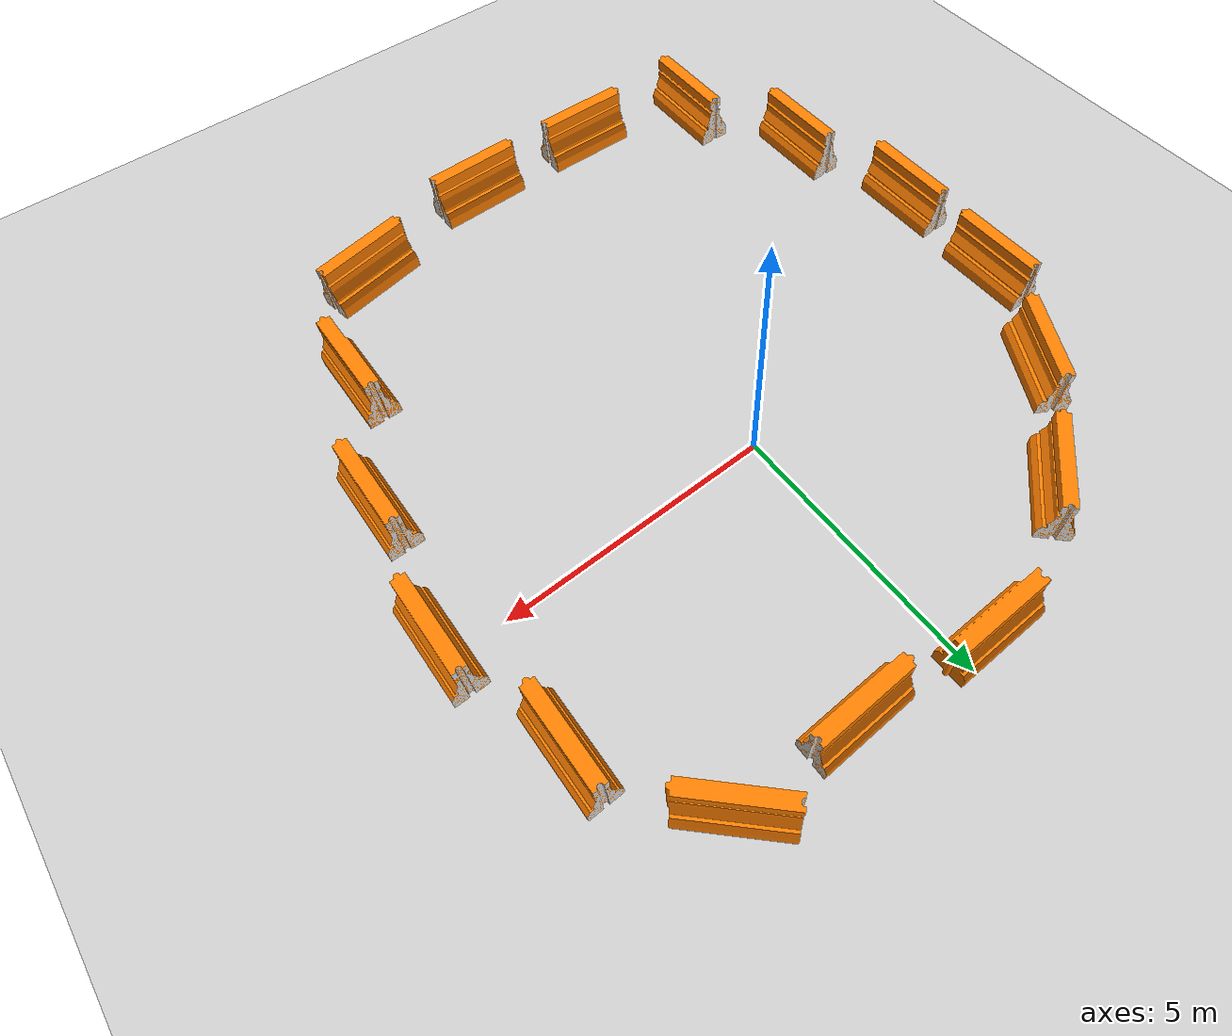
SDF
<sdf version="1.6">
 <world name="default">
  <light name="sun" type="directional">
   <pose>0 0 10 0 -0 0</pose>
   <diffuse>0.8 0.8 0.8 1</diffuse>
   <specular>0.1 0.1 0.1 1</specular>
   <attenuation>
    <range>1000</range>
    <constant>0.9</constant>
    <linear>0.01</linear>
    <quadratic>0.001</quadratic>
   </attenuation>
   <direction>-0.5 0.5 -1</direction>
  </light>
  <model name="ground_plane">
   <static>1</static>
   <link name="link">
    <collision name="collision">
     <geometry><plane><normal>0 0 1</normal><size>100 100</size></plane></geometry>
     <surface><friction><ode><mu>100</mu><mu2>50</mu2></ode></friction></surface>
    </collision>
    <visual name="visual">
     <cast_shadows>0</cast_shadows>
     <geometry><plane><normal>0 0 1</normal><size>100 100</size></plane></geometry>
     <material>
      <script><uri>file://media/materials/scripts/gazebo.material</uri><name>Gazebo/Grey</name></script>
     </material>
    </visual>
   </link>
  </model>
  <gravity>0 0 -9.8</gravity>
  <magnetic_field>6e-06 2.3e-05 -4.2e-05</magnetic_field>
  <atmosphere type="adiabatic"/>
  <physics name="default_physics" default="0" type="ode">
   <max_step_size>0.001</max_step_size>
   <real_time_factor>1</real_time_factor>
   <real_time_update_rate>1000</real_time_update_rate>
  </physics>
  <scene><ambient>0.4 0.4 0.4 1</ambient><background>0.7 0.7 0.7 1</background><shadows>1</shadows></scene>
  <spherical_coordinates>
   <surface_model>EARTH_WGS84</surface_model>
   <latitude_deg>0</latitude_deg>
   <longitude_deg>0</longitude_deg>
   <elevation>0</elevation>
   <heading_deg>0</heading_deg>
  </spherical_coordinates>
  <model name="drc_practice_organge_jersey_barrier">
   <static>1</static>
   <link name="link">
    <visual name="visual">
     <geometry>
      <mesh>
       <uri>model://drc_practice_orange_jersey_barrier/meshes/jersey_barrier.dae</uri>
       <scale>1 1 1</scale>
      </mesh>
     </geometry>
    </visual>
    <collision name="collision">
     <geometry>
      <mesh>
       <uri>model://drc_practice_orange_jersey_barrier/meshes/jersey_barrier.dae</uri>
       <scale>1 1 1</scale>
      </mesh>
     </geometry>
    </collision>
   </link>
   <pose>5.97778 -0.23593 0 0 -0 0</pose>
  </model>
  <model name="drc_practice_organge_jersey_barrier_0">
   <static>1</static>
   <link name="link">
    <visual name="visual">
     <geometry>
      <mesh>
       <uri>model://drc_practice_orange_jersey_barrier/meshes/jersey_barrier.dae</uri>
       <scale>1 1 1</scale>
      </mesh>
     </geometry>
    </visual>
    <collision name="collision">
     <geometry>
      <mesh>
       <uri>model://drc_practice_orange_jersey_barrier/meshes/jersey_barrier.dae</uri>
       <scale>1 1 1</scale>
      </mesh>
     </geometry>
    </collision>
   </link>
   <pose>-6.00475 -0.099962 0 0 -0 0</pose>
  </model>
  <model name="drc_practice_organge_jersey_barrier_1">
   <static>1</static>
   <link name="link">
    <visual name="visual">
     <geometry>
      <mesh>
       <uri>model://drc_practice_orange_jersey_barrier/meshes/jersey_barrier.dae</uri>
       <scale>1 1 1</scale>
      </mesh>
     </geometry>
    </visual>
    <collision name="collision">
     <geometry>
      <mesh>
       <uri>model://drc_practice_orange_jersey_barrier/meshes/jersey_barrier.dae</uri>
       <scale>1 1 1</scale>
      </mesh>
     </geometry>
    </collision>
   </link>
   <pose>-6.09845 -2.45805 0 0 -0 0</pose>
  </model>
  <model name="drc_practice_organge_jersey_barrier_2">
   <static>1</static>
   <link name="link">
    <visual name="visual">
     <geometry>
      <mesh>
       <uri>model://drc_practice_orange_jersey_barrier/meshes/jersey_barrier.dae</uri>
       <scale>1 1 1</scale>
      </mesh>
     </geometry>
    </visual>
    <collision name="collision">
     <geometry>
      <mesh>
       <uri>model://drc_practice_orange_jersey_barrier/meshes/jersey_barrier.dae</uri>
       <scale>1 1 1</scale>
      </mesh>
     </geometry>
    </collision>
   </link>
   <pose>-5.50817 -5.01685 0 0 -0 0</pose>
  </model>
  <model name="drc_practice_organge_jersey_barrier_3">
   <static>1</static>
   <link name="link">
    <visual name="visual">
     <geometry>
      <mesh>
       <uri>model://drc_practice_orange_jersey_barrier/meshes/jersey_barrier.dae</uri>
       <scale>1 1 1</scale>
      </mesh>
     </geometry>
    </visual>
    <collision name="collision">
     <geometry>
      <mesh>
       <uri>model://drc_practice_orange_jersey_barrier/meshes/jersey_barrier.dae</uri>
       <scale>1 1 1</scale>
      </mesh>
     </geometry>
    </collision>
   </link>
   <pose>-4.37312 -7.29072 0 0 -0 0</pose>
  </model>
  <model name="drc_practice_organge_jersey_barrier_3_clone">
   <static>1</static>
   <link name="link">
    <visual name="visual">
     <geometry>
      <mesh>
       <uri>model://drc_practice_orange_jersey_barrier/meshes/jersey_barrier.dae</uri>
       <scale>1 1 1</scale>
      </mesh>
     </geometry>
    </visual>
    <collision name="collision">
     <geometry>
      <mesh>
       <uri>model://drc_practice_orange_jersey_barrier/meshes/jersey_barrier.dae</uri>
       <scale>1 1 1</scale>
      </mesh>
     </geometry>
    </collision>
   </link>
   <pose>4.02239 4.28276 0 0 -0 0.784427</pose>
  </model>
  <model name="drc_practice_organge_jersey_barrier_4">
   <static>1</static>
   <link name="link">
    <visual name="visual">
     <geometry>
      <mesh>
       <uri>model://drc_practice_orange_jersey_barrier/meshes/jersey_barrier.dae</uri>
       <scale>1 1 1</scale>
      </mesh>
     </geometry>
    </visual>
    <collision name="collision">
     <geometry>
      <mesh>
       <uri>model://drc_practice_orange_jersey_barrier/meshes/jersey_barrier.dae</uri>
       <scale>1 1 1</scale>
      </mesh>
     </geometry>
    </collision>
   </link>
   <pose>5.3495 2.23817 0 0 -0 0</pose>
  </model>
  <model name="drc_practice_organge_jersey_barrier_5">
   <static>1</static>
   <link name="link">
    <visual name="visual">
     <geometry>
      <mesh>
       <uri>model://drc_practice_orange_jersey_barrier/meshes/jersey_barrier.dae</uri>
       <scale>1 1 1</scale>
      </mesh>
     </geometry>
    </visual>
    <collision name="collision">
     <geometry>
      <mesh>
       <uri>model://drc_practice_orange_jersey_barrier/meshes/jersey_barrier.dae</uri>
       <scale>1 1 1</scale>
      </mesh>
     </geometry>
    </collision>
   </link>
   <pose>0.5371 -7.97551 0 0 0 -1.54703</pose>
  </model>
  <model name="drc_practice_organge_jersey_barrier_6">
   <static>1</static>
   <link name="link">
    <visual name="visual">
     <geometry>
      <mesh>
       <uri>model://drc_practice_orange_jersey_barrier/meshes/jersey_barrier.dae</uri>
       <scale>1 1 1</scale>
      </mesh>
     </geometry>
    </visual>
    <collision name="collision">
     <geometry>
      <mesh>
       <uri>model://drc_practice_orange_jersey_barrier/meshes/jersey_barrier.dae</uri>
       <scale>1 1 1</scale>
      </mesh>
     </geometry>
    </collision>
   </link>
   <pose>-0.558603 4.75771 0 0 -0 1.56767</pose>
  </model>
  <model name="drc_practice_organge_jersey_barrier_7">
   <static>1</static>
   <link name="link">
    <visual name="visual">
     <geometry>
      <mesh>
       <uri>model://drc_practice_orange_jersey_barrier/meshes/jersey_barrier.dae</uri>
       <scale>1 1 1</scale>
      </mesh>
     </geometry>
    </visual>
    <collision name="collision">
     <geometry>
      <mesh>
       <uri>model://drc_practice_orange_jersey_barrier/meshes/jersey_barrier.dae</uri>
       <scale>1 1 1</scale>
      </mesh>
     </geometry>
    </collision>
   </link>
   <pose>5.57018 -2.86428 0 0 -0 0</pose>
  </model>
  <model name="drc_practice_organge_jersey_barrier_8">
   <static>1</static>
   <link name="link">
    <visual name="visual">
     <geometry>
      <mesh>
       <uri>model://drc_practice_orange_jersey_barrier/meshes/jersey_barrier.dae</uri>
       <scale>1 1 1</scale>
      </mesh>
     </geometry>
    </visual>
    <collision name="collision">
     <geometry>
      <mesh>
       <uri>model://drc_practice_orange_jersey_barrier/meshes/jersey_barrier.dae</uri>
       <scale>1 1 1</scale>
      </mesh>
     </geometry>
    </collision>
   </link>
   <pose>4.63389 -5.30289 0 0 -0 0</pose>
  </model>
  <model name="drc_practice_organge_jersey_barrier_9">
   <static>1</static>
   <link name="link">
    <visual name="visual">
     <geometry>
      <mesh>
       <uri>model://drc_practice_orange_jersey_barrier/meshes/jersey_barrier.dae</uri>
       <scale>1 1 1</scale>
      </mesh>
     </geometry>
    </visual>
    <collision name="collision">
     <geometry>
      <mesh>
       <uri>model://drc_practice_orange_jersey_barrier/meshes/jersey_barrier.dae</uri>
       <scale>1 1 1</scale>
      </mesh>
     </geometry>
    </collision>
   </link>
   <pose>-2.05865 -7.96885 0 0 0 -1.57816</pose>
  </model>
  <model name="drc_practice_organge_jersey_barrier_10">
   <static>1</static>
   <link name="link">
    <visual name="visual">
     <geometry>
      <mesh>
       <uri>model://drc_practice_orange_jersey_barrier/meshes/jersey_barrier.dae</uri>
       <scale>1 1 1</scale>
      </mesh>
     </geometry>
    </visual>
    <collision name="collision">
     <geometry>
      <mesh>
       <uri>model://drc_practice_orange_jersey_barrier/meshes/jersey_barrier.dae</uri>
       <scale>1 1 1</scale>
      </mesh>
     </geometry>
    </collision>
   </link>
   <pose>3.31409 -7.34355 0 0 0 -1.37941</pose>
  </model>
  <model name="drc_practice_organge_jersey_barrier_11">
   <static>1</static>
   <link name="link">
    <visual name="visual">
     <geometry>
      <mesh>
       <uri>model://drc_practice_orange_jersey_barrier/meshes/jersey_barrier.dae</uri>
       <scale>1 1 1</scale>
      </mesh>
     </geometry>
    </visual>
    <collision name="collision">
     <geometry>
      <mesh>
       <uri>model://drc_practice_orange_jersey_barrier/meshes/jersey_barrier.dae</uri>
       <scale>1 1 1</scale>
      </mesh>
     </geometry>
    </collision>
   </link>
   <pose>-4.9633 1.93642 0 0 0 -0.511179</pose>
  </model>
  <model name="drc_practice_organge_jersey_barrier_12">
   <static>1</static>
   <link name="link">
    <visual name="visual">
     <geometry>
      <mesh>
       <uri>model://drc_practice_orange_jersey_barrier/meshes/jersey_barrier.dae</uri>
       <scale>1 1 1</scale>
      </mesh>
     </geometry>
    </visual>
    <collision name="collision">
     <geometry>
      <mesh>
       <uri>model://drc_practice_orange_jersey_barrier/meshes/jersey_barrier.dae</uri>
       <scale>1 1 1</scale>
      </mesh>
     </geometry>
    </collision>
   </link>
   <pose>-3.24466 3.71291 0 0 0 -0.813179</pose>
  </model>
  <model name="drc_practice_organge_jersey_barrier_13">
   <static>1</static>
   <link name="link">
    <visual name="visual">
     <geometry>
      <mesh>
       <uri>model://drc_practice_orange_jersey_barrier/meshes/jersey_barrier.dae</uri>
       <scale>1 1 1</scale>
      </mesh>
     </geometry>
    </visual>
    <collision name="collision">
     <geometry>
      <mesh>
       <uri>model://drc_practice_orange_jersey_barrier/meshes/jersey_barrier.dae</uri>
       <scale>1 1 1</scale>
      </mesh>
     </geometry>
    </collision>
   </link>
   <pose>1.89462 4.42485 0 0 0 -1.56048</pose>
  </model>
 </world>
</sdf>
